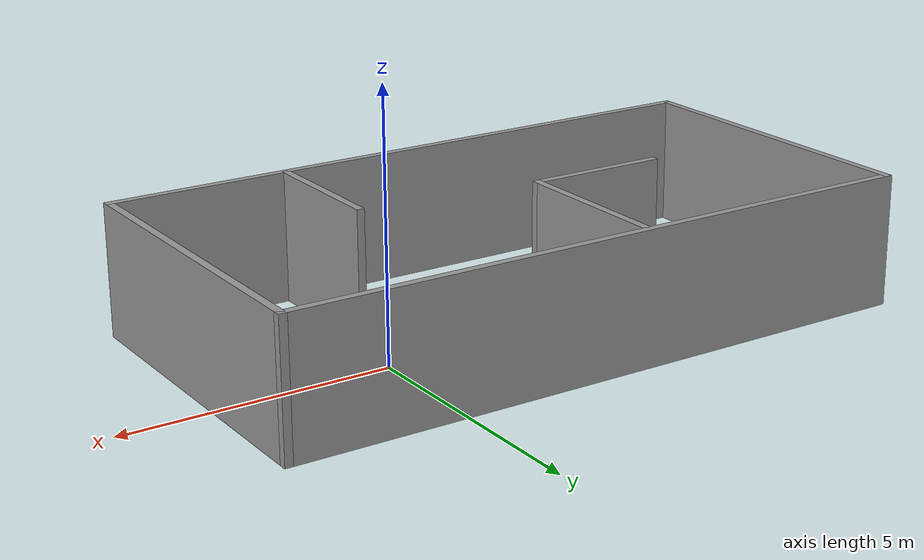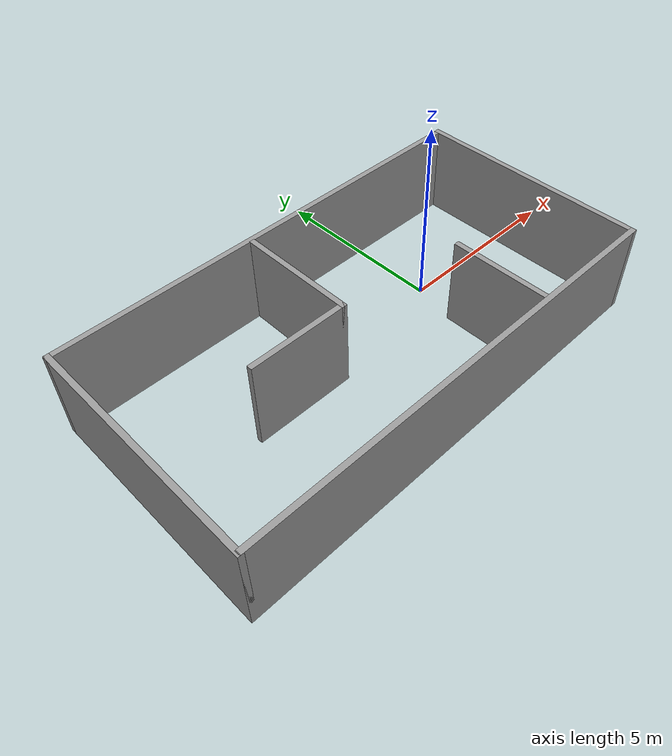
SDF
<?xml version='1.0'?>
<sdf version='1.7'>
  <model name='Untitled'>
    <pose>-2.93211 -0.744955 0 0 -0 0</pose>
    <link name='Wall_1'>
      <collision name='Wall_1_Collision'>
        <geometry>
          <box>
            <size>6.5 0.15 2.5</size>
          </box>
        </geometry>
        <pose>0 0 1.25 0 -0 0</pose>
      </collision>
      <visual name='Wall_1_Visual'>
        <pose>0 0 1.25 0 -0 0</pose>
        <geometry>
          <box>
            <size>6.5 0.15 2.5</size>
          </box>
        </geometry>
        <material>
          <script>
            <uri>file://media/materials/scripts/gazebo.material</uri>
            <name>Gazebo/Grey</name>
          </script>
          <ambient>1 1 1 1</ambient>
        </material>
        <meta>
          <layer>0</layer>
        </meta>
      </visual>
      <pose>-6.175 0 0 0 -0 -1.5708</pose>
    </link>
    <link name='Wall_2'>
      <collision name='Wall_2_Collision'>
        <geometry>
          <box>
            <size>12.5 0.15 2.5</size>
          </box>
        </geometry>
        <pose>0 0 1.25 0 -0 0</pose>
      </collision>
      <visual name='Wall_2_Visual'>
        <pose>0 0 1.25 0 -0 0</pose>
        <geometry>
          <box>
            <size>12.5 0.15 2.5</size>
          </box>
        </geometry>
        <material>
          <script>
            <uri>file://media/materials/scripts/gazebo.material</uri>
            <name>Gazebo/Grey</name>
          </script>
          <ambient>1 1 1 1</ambient>
        </material>
        <meta>
          <layer>0</layer>
        </meta>
      </visual>
      <pose>0 -3.175 0 0 -0 0</pose>
    </link>
    <link name='Wall_3'>
      <collision name='Wall_3_Collision'>
        <geometry>
          <box>
            <size>6.5 0.15 2.5</size>
          </box>
        </geometry>
        <pose>0 0 1.25 0 -0 0</pose>
      </collision>
      <visual name='Wall_3_Visual'>
        <pose>0 0 1.25 0 -0 0</pose>
        <geometry>
          <box>
            <size>6.5 0.15 2.5</size>
          </box>
        </geometry>
        <material>
          <script>
            <uri>file://media/materials/scripts/gazebo.material</uri>
            <name>Gazebo/Grey</name>
          </script>
          <ambient>1 1 1 1</ambient>
        </material>
        <meta>
          <layer>0</layer>
        </meta>
      </visual>
      <pose>6.175 0 0 0 -0 1.5708</pose>
    </link>
    <link name='Wall_4'>
      <collision name='Wall_4_Collision'>
        <geometry>
          <box>
            <size>12.5 0.15 2.5</size>
          </box>
        </geometry>
        <pose>0 0 1.25 0 -0 0</pose>
      </collision>
      <visual name='Wall_4_Visual'>
        <pose>0 0 1.25 0 -0 0</pose>
        <geometry>
          <box>
            <size>12.5 0.15 2.5</size>
          </box>
        </geometry>
        <material>
          <script>
            <uri>file://media/materials/scripts/gazebo.material</uri>
            <name>Gazebo/Grey</name>
          </script>
          <ambient>1 1 1 1</ambient>
        </material>
        <meta>
          <layer>0</layer>
        </meta>
      </visual>
      <pose>0 3.175 0 0 -0 3.14159</pose>
    </link>
    <link name='Wall_6'>
      <collision name='Wall_6_Collision'>
        <geometry>
          <box>
            <size>3.25 0.15 2.5</size>
          </box>
        </geometry>
        <pose>0 0 1.25 0 -0 0</pose>
      </collision>
      <visual name='Wall_6_Visual'>
        <pose>0 0 1.25 0 -0 0</pose>
        <geometry>
          <box>
            <size>3.25 0.15 2.5</size>
          </box>
        </geometry>
        <material>
          <script>
            <uri>file://media/materials/scripts/gazebo.material</uri>
            <name>Gazebo/Grey</name>
          </script>
          <ambient>1 1 1 1</ambient>
        </material>
        <meta>
          <layer>0</layer>
        </meta>
      </visual>
      <pose>-0.713497 1.50363 0 0 -0 -1.5708</pose>
    </link>
    <link name='Wall_7'>
      <collision name='Wall_7_Collision'>
        <geometry>
          <box>
            <size>2.75 0.15 2.5</size>
          </box>
        </geometry>
        <pose>0 0 1.25 0 -0 0</pose>
      </collision>
      <visual name='Wall_7_Visual'>
        <pose>0 0 1.25 0 -0 0</pose>
        <geometry>
          <box>
            <size>2.75 0.15 2.5</size>
          </box>
        </geometry>
        <material>
          <script>
            <uri>file://media/materials/scripts/gazebo.material</uri>
            <name>Gazebo/Grey</name>
          </script>
          <ambient>1 1 1 1</ambient>
        </material>
        <meta>
          <layer>0</layer>
        </meta>
      </visual>
      <pose>-2.0135 -0.046367 0 0 -0 3.14159</pose>
    </link>
    <link name='Wall_9'>
      <collision name='Wall_9_Collision'>
        <geometry>
          <box>
            <size>2.75 0.15 2.5</size>
          </box>
        </geometry>
        <pose>0 0 1.25 0 -0 0</pose>
      </collision>
      <visual name='Wall_9_Visual'>
        <pose>0 0 1.25 0 -0 0</pose>
        <geometry>
          <box>
            <size>2.75 0.15 2.5</size>
          </box>
        </geometry>
        <material>
          <script>
            <uri>file://media/materials/scripts/gazebo.material</uri>
            <name>Gazebo/Grey</name>
          </script>
          <ambient>1 1 1 1</ambient>
        </material>
        <meta>
          <layer>0</layer>
        </meta>
      </visual>
      <pose>2.73897 -1.80743 0 0 -0 1.5708</pose>
    </link>
    <static>1</static>
  </model>
</sdf>
